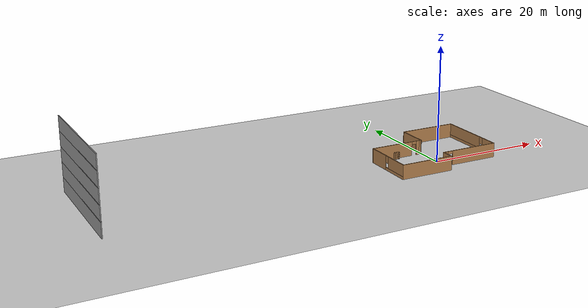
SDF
<sdf version="1.7">
 <world name="default">
  <light name="sun" type="directional">
   <pose>0 0 10 0 -0 0</pose>
   <diffuse>0.8 0.8 0.8 1</diffuse>
   <specular>0.2 0.2 0.2 1</specular>
   <attenuation>
    <range>1000</range>
    <constant>0.9</constant>
    <linear>0.01</linear>
    <quadratic>0.001</quadratic>
   </attenuation>
   <direction>-0.5 0.1 -0.9</direction>
   <spot><inner_angle>0</inner_angle><outer_angle>0</outer_angle><falloff>0</falloff></spot>
  </light>
  <model name="ground_plane">
   <static>1</static>
   <link name="link">
    <collision name="collision">
     <geometry><plane><normal>0 0 1</normal><size>100 100</size></plane></geometry>
     <surface>
      <contact><collide_bitmask>65535</collide_bitmask></contact>
      <friction><ode><mu>100</mu><mu2>50</mu2></ode></friction>
     </surface>
    </collision>
    <visual name="visual">
     <cast_shadows>0</cast_shadows>
     <geometry><plane><normal>0 0 1</normal><size>100 100</size></plane></geometry>
     <material>
      <script><uri>file://media/materials/scripts/gazebo.material</uri><name>Gazebo/Grey</name></script>
     </material>
    </visual>
   </link>
  </model>
  <gravity>0 0 -9.8</gravity>
  <magnetic_field>6e-06 2.3e-05 -4.2e-05</magnetic_field>
  <atmosphere type="adiabatic"/>
  <physics type="ode">
   <max_step_size>0.001</max_step_size>
   <real_time_factor>1</real_time_factor>
   <real_time_update_rate>1000</real_time_update_rate>
  </physics>
  <scene><ambient>0.4 0.4 0.4 1</ambient><background>0.7 0.7 0.7 1</background><shadows>1</shadows></scene>
  <audio><device>default</device></audio>
  <spherical_coordinates>
   <surface_model>EARTH_WGS84</surface_model>
   <latitude_deg>0</latitude_deg>
   <longitude_deg>0</longitude_deg>
   <elevation>0</elevation>
   <heading_deg>0</heading_deg>
  </spherical_coordinates>
  <model name="bookshelf">
   <static>1</static>
   <link name="link">
    <inertial><mass>1</mass></inertial>
    <collision name="back">
     <pose>0 0.005 0.6 0 -0 0</pose>
     <geometry><box><size>0.9 0.01 1.2</size></box></geometry>
    </collision>
    <visual name="visual1">
     <pose>0 0.005 0.6 0 -0 0</pose>
     <geometry><box><size>0.9 0.01 1.2</size></box></geometry>
     <material>
      <script><uri>file://media/materials/scripts/gazebo.material</uri><name>Gazebo/Wood</name></script>
     </material>
    </visual>
    <collision name="left_side">
     <pose>0.45 -0.195 0.6 0 -0 0</pose>
     <geometry><box><size>0.02 0.4 1.2</size></box></geometry>
    </collision>
    <visual name="visual2">
     <pose>0.45 -0.195 0.6 0 -0 0</pose>
     <geometry><box><size>0.02 0.4 1.2</size></box></geometry>
     <material>
      <script><uri>file://media/materials/scripts/gazebo.material</uri><name>Gazebo/Wood</name></script>
     </material>
    </visual>
    <collision name="right_side">
     <pose>-0.45 -0.195 0.6 0 -0 0</pose>
     <geometry><box><size>0.02 0.4 1.2</size></box></geometry>
    </collision>
    <visual name="visual3">
     <pose>-0.45 -0.195 0.6 0 -0 0</pose>
     <geometry><box><size>0.02 0.4 1.2</size></box></geometry>
     <material>
      <script><uri>file://media/materials/scripts/gazebo.material</uri><name>Gazebo/Wood</name></script>
     </material>
    </visual>
    <collision name="bottom">
     <pose>0 -0.195 0.03 0 -0 0</pose>
     <geometry><box><size>0.88 0.4 0.06</size></box></geometry>
    </collision>
    <visual name="visual4">
     <pose>0 -0.195 0.03 0 -0 0</pose>
     <geometry><box><size>0.88 0.4 0.06</size></box></geometry>
     <material>
      <script><uri>file://media/materials/scripts/gazebo.material</uri><name>Gazebo/Wood</name></script>
     </material>
    </visual>
    <collision name="top">
     <pose>0 -0.195 1.19 0 -0 0</pose>
     <geometry><box><size>0.88 0.4 0.02</size></box></geometry>
    </collision>
    <visual name="visual5">
     <pose>0 -0.195 1.19 0 -0 0</pose>
     <geometry><box><size>0.88 0.4 0.02</size></box></geometry>
     <material>
      <script><uri>file://media/materials/scripts/gazebo.material</uri><name>Gazebo/Wood</name></script>
     </material>
    </visual>
    <collision name="low_shelf">
     <pose>0 -0.195 0.43 0 -0 0</pose>
     <geometry><box><size>0.88 0.4 0.02</size></box></geometry>
    </collision>
    <visual name="visual6">
     <pose>0 -0.195 0.43 0 -0 0</pose>
     <geometry><box><size>0.88 0.4 0.02</size></box></geometry>
     <material>
      <script><uri>file://media/materials/scripts/gazebo.material</uri><name>Gazebo/Wood</name></script>
     </material>
    </visual>
    <collision name="high_shelf">
     <pose>0 -0.195 0.8 0 -0 0</pose>
     <geometry><box><size>0.88 0.4 0.02</size></box></geometry>
    </collision>
    <visual name="visual7">
     <pose>0 -0.195 0.8 0 -0 0</pose>
     <geometry><box><size>0.88 0.4 0.02</size></box></geometry>
     <material>
      <script><uri>file://media/materials/scripts/gazebo.material</uri><name>Gazebo/Wood</name></script>
     </material>
    </visual>
   </link>
   <pose>-5.23117 4.63902 0 0 -0 0</pose>
  </model>
  <model name="test">
   <pose>-24.5586 5.63931 0 0 -0 0</pose>
   <link name="Floor_6">
    <collision name="Floor_6_Collision">
     <geometry><box><size>0.15 20.5 0.1</size></box></geometry>
     <pose>0 0 0.05 0 -0 0</pose>
    </collision>
    <visual name="Floor_6_Visual">
     <pose>0 0 0.05 0 -0 0</pose>
     <geometry><box><size>0.15 20.5 0.1</size></box></geometry>
     <material>
      <script><uri>file://media/materials/scripts/gazebo.material</uri><name>Gazebo/Grey</name></script>
      <ambient>1 1 1 1</ambient>
     </material>
     <meta><layer>1</layer></meta>
    </visual>
    <pose>-34.5431 0.015172 2.5 0 -0 0</pose>
   </link>
   <link name="Floor_7">
    <collision name="Floor_7_Collision">
     <geometry><box><size>0.15 20.5 0.1</size></box></geometry>
     <pose>0 0 0.05 0 -0 0</pose>
    </collision>
    <visual name="Floor_7_Visual">
     <pose>0 0 0.05 0 -0 0</pose>
     <geometry><box><size>0.15 20.5 0.1</size></box></geometry>
     <material>
      <script><uri>file://media/materials/scripts/gazebo.material</uri><name>Gazebo/Grey</name></script>
      <ambient>1 1 1 1</ambient>
     </material>
     <meta><layer>2</layer></meta>
    </visual>
    <pose>-34.5431 0.015172 5 0 -0 0</pose>
   </link>
   <link name="Floor_8">
    <collision name="Floor_8_Collision">
     <geometry><box><size>0.15 20.5 0.1</size></box></geometry>
     <pose>0 0 0.05 0 -0 0</pose>
    </collision>
    <visual name="Floor_8_Visual">
     <pose>0 0 0.05 0 -0 0</pose>
     <geometry><box><size>0.15 20.5 0.1</size></box></geometry>
     <material>
      <script><uri>file://media/materials/scripts/gazebo.material</uri><name>Gazebo/Grey</name></script>
      <ambient>1 1 1 1</ambient>
     </material>
     <meta><layer>3</layer></meta>
    </visual>
    <pose>-34.5431 0.015172 7.5 0 -0 0</pose>
   </link>
   <link name="Floor_9">
    <collision name="Floor_9_Collision">
     <geometry><box><size>0.15 20.5 0.1</size></box></geometry>
     <pose>0 0 0.05 0 -0 0</pose>
    </collision>
    <visual name="Floor_9_Visual">
     <pose>0 0 0.05 0 -0 0</pose>
     <geometry><box><size>0.15 20.5 0.1</size></box></geometry>
     <material>
      <script><uri>file://media/materials/scripts/gazebo.material</uri><name>Gazebo/Grey</name></script>
      <ambient>1 1 1 1</ambient>
     </material>
     <meta><layer>4</layer></meta>
    </visual>
    <pose>-34.5431 0.015172 10 0 -0 0</pose>
   </link>
   <link name="Wall_0">
    <collision name="Wall_0_Collision">
     <geometry><box><size>20.5 0.15 2.5</size></box></geometry>
     <pose>0 0 1.25 0 -0 0</pose>
    </collision>
    <visual name="Wall_0_Visual">
     <pose>0 0 1.25 0 -0 0</pose>
     <geometry><box><size>20.5 0.15 2.5</size></box></geometry>
     <material>
      <script><uri>file://media/materials/scripts/gazebo.material</uri><name>Gazebo/Grey</name></script>
      <ambient>1 1 1 1</ambient>
     </material>
     <meta><layer>0</layer></meta>
    </visual>
    <pose>-34.5431 0.015172 0 0 -0 1.5708</pose>
   </link>
   <link name="Wall_10">
    <collision name="Wall_10_Collision">
     <geometry><box><size>20.5 0.15 2.5</size></box></geometry>
     <pose>0 0 1.25 0 -0 0</pose>
    </collision>
    <visual name="Wall_10_Visual">
     <pose>0 0 1.25 0 -0 0</pose>
     <geometry><box><size>20.5 0.15 2.5</size></box></geometry>
     <material>
      <script><uri>file://media/materials/scripts/gazebo.material</uri><name>Gazebo/Grey</name></script>
      <ambient>1 1 1 1</ambient>
     </material>
     <meta><layer>3</layer></meta>
    </visual>
    <pose>-34.5431 0.015172 7.5 0 -0 1.5708</pose>
   </link>
   <link name="Wall_11">
    <collision name="Wall_11_Collision">
     <geometry><box><size>20.5 0.15 2.5</size></box></geometry>
     <pose>0 0 1.25 0 -0 0</pose>
    </collision>
    <visual name="Wall_11_Visual">
     <pose>0 0 1.25 0 -0 0</pose>
     <geometry><box><size>20.5 0.15 2.5</size></box></geometry>
     <material>
      <script><uri>file://media/materials/scripts/gazebo.material</uri><name>Gazebo/Grey</name></script>
      <ambient>1 1 1 1</ambient>
     </material>
     <meta><layer>4</layer></meta>
    </visual>
    <pose>-34.5431 0.015172 10 0 -0 1.5708</pose>
   </link>
   <link name="Wall_15">
    <pose>19.3931 -0.840173 0 0 -0 3.14159</pose>
    <visual name="Wall_15_Visual_0">
     <pose>-4.34683 0 1.25 0 -0 0</pose>
     <geometry><box><size>0.556333 0.15 2.5</size></box></geometry>
     <material>
      <script><uri>file://media/materials/scripts/gazebo.material</uri><name>Gazebo/Wood</name></script>
      <ambient>0.921569 0.807843 0.615686 1</ambient>
     </material>
     <meta><layer>0</layer></meta>
    </visual>
    <collision name="Wall_15_Collision_0">
     <geometry><box><size>0.556333 0.15 2.5</size></box></geometry>
     <pose>-4.34683 0 1.25 0 -0 0</pose>
    </collision>
    <visual name="Wall_15_Visual_1">
     <pose>0.728166 0 1.25 0 -0 0</pose>
     <geometry><box><size>7.79367 0.15 2.5</size></box></geometry>
     <material>
      <script><uri>file://media/materials/scripts/gazebo.material</uri><name>Gazebo/Wood</name></script>
      <ambient>0.921569 0.807843 0.615686 1</ambient>
     </material>
     <meta><layer>0</layer></meta>
    </visual>
    <collision name="Wall_15_Collision_1">
     <geometry><box><size>7.79367 0.15 2.5</size></box></geometry>
     <pose>0.728166 0 1.25 0 -0 0</pose>
    </collision>
    <visual name="Wall_15_Visual_2">
     <pose>-3.61867 0 2.25 0 -0 0</pose>
     <geometry><box><size>0.9 0.15 0.5</size></box></geometry>
     <material>
      <script><uri>file://media/materials/scripts/gazebo.material</uri><name>Gazebo/Wood</name></script>
      <ambient>0.921569 0.807843 0.615686 1</ambient>
     </material>
     <meta><layer>0</layer></meta>
    </visual>
    <collision name="Wall_15_Collision_2">
     <geometry><box><size>0.9 0.15 0.5</size></box></geometry>
     <pose>-3.61867 0 2.25 0 -0 0</pose>
    </collision>
   </link>
   <link name="Wall_16">
    <pose>14.8431 -5.51517 0 0 -0 -1.5708</pose>
    <visual name="Wall_16_Visual_0">
     <pose>-2.68764 0 1.25 0 -0 0</pose>
     <geometry><box><size>4.12472 0.15 2.5</size></box></geometry>
     <material>
      <script><uri>file://media/materials/scripts/gazebo.material</uri><name>Gazebo/Wood</name></script>
      <ambient>0.921569 0.807843 0.615686 1</ambient>
     </material>
     <meta><layer>0</layer></meta>
    </visual>
    <collision name="Wall_16_Collision_0">
     <geometry><box><size>4.12472 0.15 2.5</size></box></geometry>
     <pose>-2.68764 0 1.25 0 -0 0</pose>
    </collision>
    <visual name="Wall_16_Visual_1">
     <pose>2.06236 0 0.25 0 -0 0</pose>
     <geometry><box><size>5.37528 0.15 0.5</size></box></geometry>
     <material>
      <script><uri>file://media/materials/scripts/gazebo.material</uri><name>Gazebo/Wood</name></script>
      <ambient>0.921569 0.807843 0.615686 1</ambient>
     </material>
     <meta><layer>0</layer></meta>
    </visual>
    <collision name="Wall_16_Collision_1">
     <geometry><box><size>5.37528 0.15 0.5</size></box></geometry>
     <pose>2.06236 0 0.25 0 -0 0</pose>
    </collision>
    <visual name="Wall_16_Visual_2">
     <pose>2.46236 0 1.5 0 -0 0</pose>
     <geometry><box><size>4.57528 0.15 2</size></box></geometry>
     <material>
      <script><uri>file://media/materials/scripts/gazebo.material</uri><name>Gazebo/Wood</name></script>
      <ambient>0.921569 0.807843 0.615686 1</ambient>
     </material>
     <meta><layer>0</layer></meta>
    </visual>
    <collision name="Wall_16_Collision_2">
     <geometry><box><size>4.57528 0.15 2</size></box></geometry>
     <pose>2.46236 0 1.5 0 -0 0</pose>
    </collision>
    <visual name="Wall_16_Visual_3">
     <pose>-0.225279 0 1.9 0 -0 0</pose>
     <geometry><box><size>0.8 0.15 1.2</size></box></geometry>
     <material>
      <script><uri>file://media/materials/scripts/gazebo.material</uri><name>Gazebo/Wood</name></script>
      <ambient>0.921569 0.807843 0.615686 1</ambient>
     </material>
     <meta><layer>0</layer></meta>
    </visual>
    <collision name="Wall_16_Collision_3">
     <geometry><box><size>0.8 0.15 1.2</size></box></geometry>
     <pose>-0.225279 0 1.9 0 -0 0</pose>
    </collision>
   </link>
   <link name="Wall_17">
    <collision name="Wall_17_Collision">
     <geometry><box><size>9.5 0.15 2.5</size></box></geometry>
     <pose>0 0 1.25 0 -0 0</pose>
    </collision>
    <visual name="Wall_17_Visual">
     <pose>0 0 1.25 0 -0 0</pose>
     <geometry><box><size>9.5 0.15 2.5</size></box></geometry>
     <material>
      <script><uri>file://media/materials/scripts/gazebo.material</uri><name>Gazebo/Wood</name></script>
      <ambient>1 0.764706 0.305882 1</ambient>
     </material>
     <meta><layer>0</layer></meta>
    </visual>
    <pose>19.5181 -10.1902 0 0 -0 0</pose>
   </link>
   <link name="Wall_18">
    <collision name="Wall_18_Collision">
     <geometry><box><size>2.25 0.15 2.5</size></box></geometry>
     <pose>0 0 1.25 0 -0 0</pose>
    </collision>
    <visual name="Wall_18_Visual">
     <pose>0 0 1.25 0 -0 0</pose>
     <geometry><box><size>2.25 0.15 2.5</size></box></geometry>
     <material>
      <script><uri>file://media/materials/scripts/gazebo.material</uri><name>Gazebo/Wood</name></script>
      <ambient>1 1 1 1</ambient>
     </material>
     <meta><layer>0</layer></meta>
    </visual>
    <pose>24.1931 -9.14017 0 0 -0 1.5708</pose>
   </link>
   <link name="Wall_19">
    <pose>29.3681 -8.09017 0 0 -0 0</pose>
    <visual name="Wall_19_Visual_0">
     <pose>-4.78904 0 1.25 0 -0 0</pose>
     <geometry><box><size>0.921928 0.15 2.5</size></box></geometry>
     <material>
      <script><uri>file://media/materials/scripts/gazebo.material</uri><name>Gazebo/Wood</name></script>
      <ambient>0.760784 0.662745 0.627451 1</ambient>
     </material>
     <meta><layer>0</layer></meta>
    </visual>
    <collision name="Wall_19_Collision_0">
     <geometry><box><size>0.921928 0.15 2.5</size></box></geometry>
     <pose>-4.78904 0 1.25 0 -0 0</pose>
    </collision>
    <visual name="Wall_19_Visual_1">
     <pose>0.910964 0 1.25 0 -0 0</pose>
     <geometry><box><size>8.67807 0.15 2.5</size></box></geometry>
     <material>
      <script><uri>file://media/materials/scripts/gazebo.material</uri><name>Gazebo/Wood</name></script>
      <ambient>0.760784 0.662745 0.627451 1</ambient>
     </material>
     <meta><layer>0</layer></meta>
    </visual>
    <collision name="Wall_19_Collision_1">
     <geometry><box><size>8.67807 0.15 2.5</size></box></geometry>
     <pose>0.910964 0 1.25 0 -0 0</pose>
    </collision>
    <visual name="Wall_19_Visual_2">
     <pose>-3.87807 0 2.25 0 -0 0</pose>
     <geometry><box><size>0.9 0.15 0.5</size></box></geometry>
     <material>
      <script><uri>file://media/materials/scripts/gazebo.material</uri><name>Gazebo/Wood</name></script>
      <ambient>0.760784 0.662745 0.627451 1</ambient>
     </material>
     <meta><layer>0</layer></meta>
    </visual>
    <collision name="Wall_19_Collision_2">
     <geometry><box><size>0.9 0.15 0.5</size></box></geometry>
     <pose>-3.87807 0 2.25 0 -0 0</pose>
    </collision>
   </link>
   <link name="Wall_20">
    <pose>34.5431 -1.79017 0 0 -0 1.5708</pose>
    <visual name="Wall_20_Visual_0">
     <pose>-4.77214 0 1.25 0 -0 0</pose>
     <geometry><box><size>3.20571 0.15 2.5</size></box></geometry>
     <material>
      <script><uri>file://media/materials/scripts/gazebo.material</uri><name>Gazebo/Wood</name></script>
      <ambient>0.760784 0.662745 0.627451 1</ambient>
     </material>
     <meta><layer>0</layer></meta>
    </visual>
    <collision name="Wall_20_Collision_0">
     <geometry><box><size>3.20571 0.15 2.5</size></box></geometry>
     <pose>-4.77214 0 1.25 0 -0 0</pose>
    </collision>
    <visual name="Wall_20_Visual_1">
     <pose>1.60286 0 0.25 0 -0 0</pose>
     <geometry><box><size>9.54429 0.15 0.5</size></box></geometry>
     <material>
      <script><uri>file://media/materials/scripts/gazebo.material</uri><name>Gazebo/Wood</name></script>
      <ambient>0.760784 0.662745 0.627451 1</ambient>
     </material>
     <meta><layer>0</layer></meta>
    </visual>
    <collision name="Wall_20_Collision_1">
     <geometry><box><size>9.54429 0.15 0.5</size></box></geometry>
     <pose>1.60286 0 0.25 0 -0 0</pose>
    </collision>
    <visual name="Wall_20_Visual_2">
     <pose>2.00286 0 1.5 0 -0 0</pose>
     <geometry><box><size>8.74429 0.15 2</size></box></geometry>
     <material>
      <script><uri>file://media/materials/scripts/gazebo.material</uri><name>Gazebo/Wood</name></script>
      <ambient>0.760784 0.662745 0.627451 1</ambient>
     </material>
     <meta><layer>0</layer></meta>
    </visual>
    <collision name="Wall_20_Collision_2">
     <geometry><box><size>8.74429 0.15 2</size></box></geometry>
     <pose>2.00286 0 1.5 0 -0 0</pose>
    </collision>
    <visual name="Wall_20_Visual_3">
     <pose>-2.76929 0 1.9 0 -0 0</pose>
     <geometry><box><size>0.8 0.15 1.2</size></box></geometry>
     <material>
      <script><uri>file://media/materials/scripts/gazebo.material</uri><name>Gazebo/Wood</name></script>
      <ambient>0.760784 0.662745 0.627451 1</ambient>
     </material>
     <meta><layer>0</layer></meta>
    </visual>
    <collision name="Wall_20_Collision_3">
     <geometry><box><size>0.8 0.15 1.2</size></box></geometry>
     <pose>-2.76929 0 1.9 0 -0 0</pose>
    </collision>
   </link>
   <link name="Wall_21">
    <collision name="Wall_21_Collision">
     <geometry><box><size>10.25 0.15 2.5</size></box></geometry>
     <pose>0 0 1.25 0 -0 0</pose>
    </collision>
    <visual name="Wall_21_Visual">
     <pose>0 0 1.25 0 -0 0</pose>
     <geometry><box><size>10.25 0.15 2.5</size></box></geometry>
     <material>
      <script><uri>file://media/materials/scripts/gazebo.material</uri><name>Gazebo/Wood</name></script>
      <ambient>0.760784 0.662745 0.627451 1</ambient>
     </material>
     <meta><layer>0</layer></meta>
    </visual>
    <pose>29.4931 4.50983 0 0 -0 3.14159</pose>
   </link>
   <link name="Wall_22">
    <collision name="Wall_22_Collision">
     <geometry><box><size>5.5 0.15 2.5</size></box></geometry>
     <pose>0 0 1.25 0 -0 0</pose>
    </collision>
    <visual name="Wall_22_Visual">
     <pose>0 0 1.25 0 -0 0</pose>
     <geometry><box><size>5.5 0.15 2.5</size></box></geometry>
     <material>
      <script><uri>file://media/materials/scripts/gazebo.material</uri><name>Gazebo/Wood</name></script>
      <ambient>0.760784 0.662745 0.627451 1</ambient>
     </material>
     <meta><layer>0</layer></meta>
    </visual>
    <pose>24.4431 1.83483 0 0 -0 -1.5708</pose>
   </link>
   <link name="Wall_23">
    <collision name="Wall_23_Collision">
     <geometry><box><size>0.65 0.15 2.5</size></box></geometry>
     <pose>0 0 1.25 0 -0 0</pose>
    </collision>
    <visual name="Wall_23_Visual">
     <pose>0 0 1.25 0 -0 0</pose>
     <geometry><box><size>0.65 0.15 2.5</size></box></geometry>
     <material>
      <script><uri>file://media/materials/scripts/gazebo.material</uri><name>Gazebo/Wood</name></script>
      <ambient>1 1 1 1</ambient>
     </material>
     <meta><layer>0</layer></meta>
    </visual>
    <pose>24.1931 -0.840173 0 0 -0 3.14159</pose>
   </link>
   <link name="Wall_8">
    <collision name="Wall_8_Collision">
     <geometry><box><size>20.5 0.15 2.5</size></box></geometry>
     <pose>0 0 1.25 0 -0 0</pose>
    </collision>
    <visual name="Wall_8_Visual">
     <pose>0 0 1.25 0 -0 0</pose>
     <geometry><box><size>20.5 0.15 2.5</size></box></geometry>
     <material>
      <script><uri>file://media/materials/scripts/gazebo.material</uri><name>Gazebo/Grey</name></script>
      <ambient>1 1 1 1</ambient>
     </material>
     <meta><layer>1</layer></meta>
    </visual>
    <pose>-34.5431 0.015172 2.5 0 -0 1.5708</pose>
   </link>
   <link name="Wall_9">
    <collision name="Wall_9_Collision">
     <geometry><box><size>20.5 0.15 2.5</size></box></geometry>
     <pose>0 0 1.25 0 -0 0</pose>
    </collision>
    <visual name="Wall_9_Visual">
     <pose>0 0 1.25 0 -0 0</pose>
     <geometry><box><size>20.5 0.15 2.5</size></box></geometry>
     <material>
      <script><uri>file://media/materials/scripts/gazebo.material</uri><name>Gazebo/Grey</name></script>
      <ambient>1 1 1 1</ambient>
     </material>
     <meta><layer>2</layer></meta>
    </visual>
    <pose>-34.5431 0.015172 5 0 -0 1.5708</pose>
   </link>
   <static>1</static>
  </model>
 </world>
</sdf>
